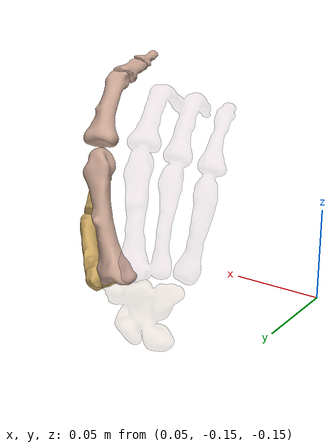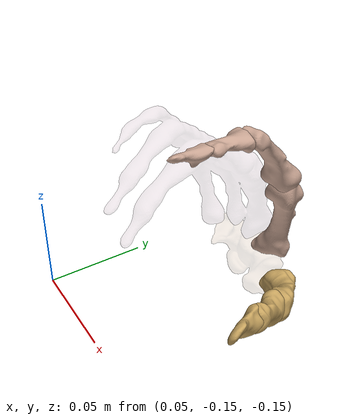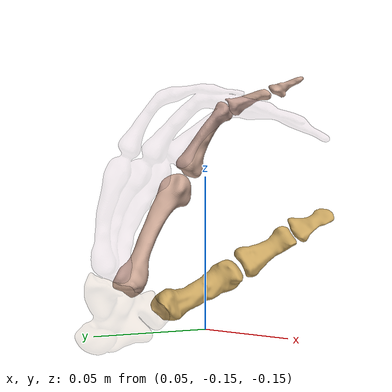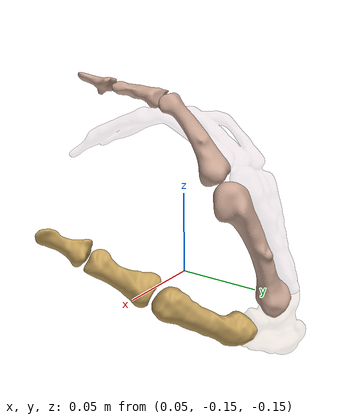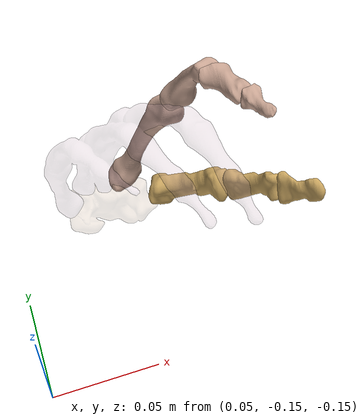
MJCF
<mujoco model="hand model">
    <visual>
        <headlight diffuse="0.6 0.6 0.6" ambient="0.3 0.3 0.3" specular="0 0 0" />
        <rgba haze="0.15 0.25 0.35 1" />
        <map znear="0.01" />
    </visual>
    <asset>
        <texture type="skybox" builtin="gradient" rgb1="0.3 0.5 0.7" rgb2="0 0 0" width="512"
            height="3072" />
        <texture type="2d" name="groundplane" builtin="checker" mark="edge" rgb1="0.2 0.3 0.4"
            rgb2="0.1 0.2 0.3" markrgb="0.8 0.8 0.8" width="300" height="300" />
        <material name="groundplane" texture="groundplane" texuniform="true" texrepeat="10 10"
            reflectance="0.3" />
        <material name="bone" reflectance="1" shininess="0" specular="0" rgba="0.68 0.64 0.57 1" />
    </asset>
    <default>
        <default class="zf">
            <geom type="mesh" contype="3" conaffinity="2" group="0" friction="0.7" solref="0.015 1"
                solimp="0.95 0.99 0.003" rgba="0.78 0.64 0.57 0.9" />
        </default>
        <default class="dau">
            <geom type="mesh" contype="3" conaffinity="2" group="0" friction="0.7" solref="0.015 1"
                solimp="0.95 0.99 0.003" rgba="0.78 0.64 0.37 0.9" />
        </default>
        <default class="base">
            <geom type="mesh" contype="3" conaffinity="2" group="0" friction="0.7" solref="0.015 1"
                solimp="0.95 0.99 0.003" rgba="0.74 0.60 0.47 0.1" />
        </default>
        <default class="other">
            <geom type="mesh" contype="3" conaffinity="2" group="0" friction="0.7" solref="0.015 1"
                solimp="0.95 0.99 0.003" rgba="0.74 0.60 0.67 0.1" />
        </default>
        <default class="visual">
            <geom type="mesh" contype="0" conaffinity="0" group="2" material="bone"
                rgba="0.68 0.64 0.57 1.0" />
        </default>
        <default class="tracker">
            <geom type="mesh" contype="0" conaffinity="0" group="2" rgba="0.2 0.2 1 0.2" />
        </default>
    </default>

    <compiler angle="radian" meshdir="../../assets/meshes" texturedir="assets" />
    <option integrator="RK4" />

    <statistic center="-0.4 -0.4 0.2" extent="1.2" />

    <visual>
        <headlight diffuse="0.6 0.6 0.6" ambient="0.3 0.3 0.3" specular="0 0 0" />
        <rgba haze="0.15 0.25 0.35 1" />
        <map znear="0.01" />
    </visual>

    <asset>
        <mesh file="Segmentation_ZF_DIP.stl" name="ZF-DIP" scale="0.001 0.001 0.001" />
        <mesh file="Segmentation_ZF_PIP.stl" name="ZF-PIP1" scale="0.001 0.001 0.001" />
        <mesh file="zf_mid2.stl" name="ZF-PIP2" scale="0.001 0.001 0.001" />
        <mesh file="zf_mcp.stl" name="ZF-MCP" scale="0.001 0.001 0.001" />
        <mesh file="Segmentation_DAU_Osmetacarpale_1.stl" name="DAU-MCP" scale="0.001 0.001 0.001" />
        <mesh file="Segmentation_DAU_Phalax_proximalis.stl" name="DAU-PIP" scale="0.001 0.001 0.001" />
        <mesh file="Segmentation_DAU_DIP.stl" name="DAU-DIP" scale="0.001 0.001 0.001" />
        <mesh file="backhand.stl" name="BASE" scale="0.001 0.001 0.001" />
        <mesh file="rest.stl" name="OTHER" scale="0.001 0.001 0.001" />
    </asset>

    <worldbody>

        <light pos="0 0 1.5" dir="0 0 -1" directional="true" />
        <geom name="floor" size="0 0 0.05" type="plane" material="groundplane" pos="0 0 0" />

        <body name="ZF_MCP" pos="0.17653043607413418 -0.006212724687087837 0.162465233212028"
            quat="0.949339165514938 0.2596204789151586 0.14900580594456572 -0.09565367500559203">

            <geom class="zf" mesh="ZF-MCP" type="mesh" />
            <geom class="base" mesh="BASE" type="mesh" />
            <geom class="other" mesh="OTHER" type="mesh" />

            <body name="DAU_MCP"
                pos="-0.0009733297722407741 -0.016606395993572436 0.013203568453270123"
                quat="0.9943462283715698 0.020508983176589547 0.06420367915643692 0.08205392930916784">
                <geom class="dau" mesh="DAU-MCP" type="mesh" />

                <joint armature="0.001"
                    axis="0.3682366304728564 0.7986139899567369 -0.4760435684087948" limited="true"
                    name="ZF_MCP_to_DAU_CMC"
                    pos="0.05868601473520566 -0.19759587547230298 -0.21986515245037308" range="-1 1"
                    type="hinge" />
                <joint armature="0.001"
                    axis="0.4997803015461226 -0.7320540449149288 -0.4629433286161044" limited="true"
                    name="DAU_CMC_to_DAU_MCP"
                    pos="0.052823806491388195 -0.1992836202982904 -0.2242866633462451"
                    range="-0.2 1" type="hinge" />

                <body name="DAU_PIP"
                    pos="0.006597607401319934 0.005692156396961636 -0.004063291682216772"
                    quat="0.9998344657876412 -0.010228438928553777 0.0009345748564418955 -0.015018209948745346">
                    <geom class="dau" mesh="DAU-PIP" type="mesh" />

                    <joint armature="0.001"
                        axis="0.40277187478378623 -0.8742272690122207 -0.2711115987902194"
                        limited="true" name="DAU_MCP_to_DAU_PIP"
                        pos="0.07232823209912542 -0.204002629992187 -0.18459872569761973"
                        range="-0.2 1" type="hinge" />

                    <body name="DAU_DIP"
                        pos="0.019846615771965104 0.0062637319439134845 4.985729243009019e-05"
                        quat="0.9991378069061835 -0.002240422127798763 0.006912900201265252 -0.04087585020765087">
                        <geom class="dau" mesh="DAU-DIP" type="mesh" />

                        <joint armature="0.001"
                            axis="0.2868369190909204 -0.8609968210871005 -0.42001078072394143"
                            limited="true" name="DAU_PIP_to_DAU_DIP"
                            pos="0.07857547955055834 -0.21284250108443298 -0.15199965041391605"
                            range="-0.2 1" type="hinge" />
                        <body name="DAU_TIP" />
                    </body>
                </body>
            </body>

            <body name="ZF_PIP2"
                pos="-0.05681330470781501 0.045579181974214705 -0.12097905722243993"
                quat="0.9545717945947939 -0.22374727893632648 -0.19425296263754305 0.031553615311116466">
                <geom class="zf" mesh="ZF-PIP2" type="mesh" />

                <joint armature="0.001"
                    axis="0.8537163910836949 0.5207148159478054 0.004940045290855802" limited="true"
                    name="ZF_MCP_to_ZF_PIP2"
                    pos="0.042393464794939974 -0.17428384386933937 -0.1677056085414468"
                    range="-0.4 1" type="hinge" />

                <body name="ZF_PIP1"
                    pos="0.0035058139319465343 -0.028415907847893287 0.03578303075214987"
                    quat="0.995280924363944 0.08857938205036858 0.03474634812427974 0.019033285708313686">
                    <geom class="zf" mesh="ZF-PIP1" type="mesh" />

                    <joint armature="0.001"
                        axis="0.8715247324352462 0.4903312975921131 0.004456383657784398"
                        limited="true" name="ZF_PIP2_to_ZF_PIP1"
                        pos="0.054582629429888445 -0.19437842495440008 -0.1293550383482385"
                        range="-0.4 1" type="hinge" />

                    <body name="ZF_DIP"
                        pos="-0.00680048069279826 -0.01349979913849495 0.017965216916995503"
                        quat="0.998934816863429 0.04221477999663421 0.002849840039574148 0.018412561462543154">
                        <geom class="zf" mesh="ZF-DIP" type="mesh" />

                        <joint armature="0.001"
                            axis="0.8676489971882068 0.4115251406262877 0.27898436571036417"
                            limited="true" name="ZF_PIP1_to_ZF_DIP"
                            pos="0.061986142459955734 -0.21399234648210325 -0.12011497793113776"
                            range="-0.4 1" type="hinge" />

                        <body name="ZF_TIP" />
                    </body>
                </body>
            </body>
        </body>

        <camera name="camera0" pos="0.375 0.069 0.146"
            xyaxes="-0.581 0.814 0.000 -0.114 -0.081 0.990" />

    </worldbody>
</mujoco>
